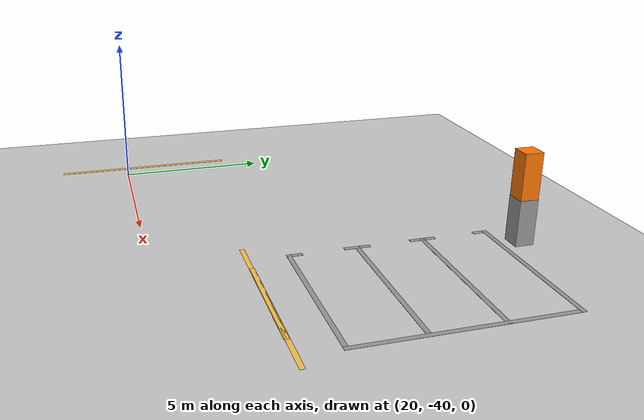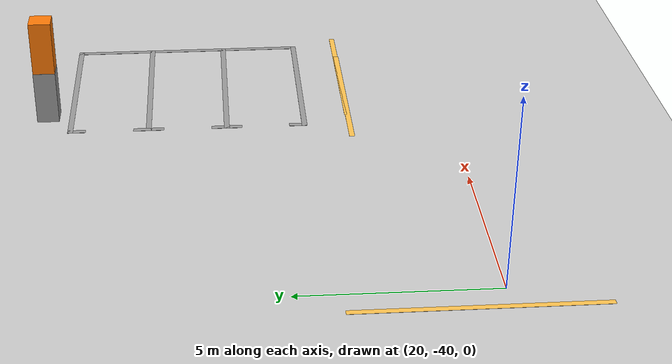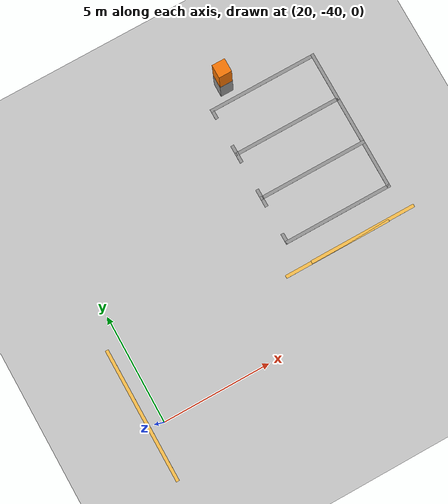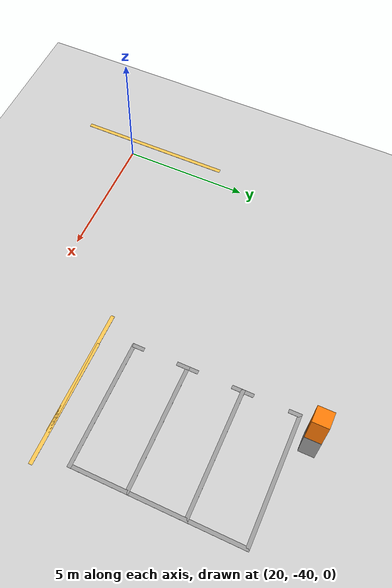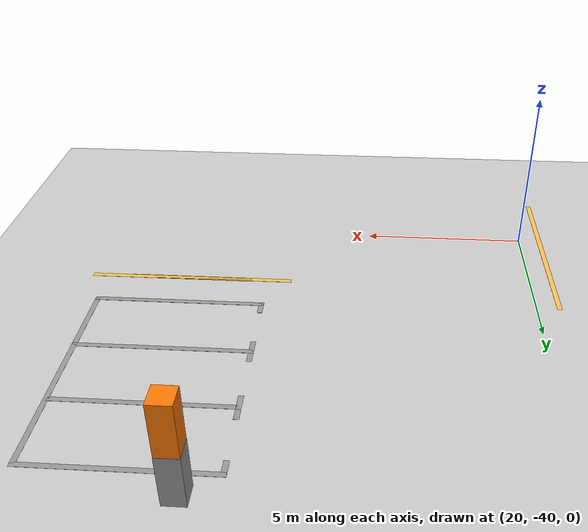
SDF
<sdf version="1.7">
 <world name="default">
  <model name="ground_plane">
   <static>1</static>
   <link name="link">
    <collision name="collision">
     <geometry><plane><normal>0 0 1</normal><size>100 100</size></plane></geometry>
     <surface><friction><ode><mu>100</mu><mu2>50</mu2></ode></friction></surface>
    </collision>
    <visual name="visual">
     <cast_shadows>0</cast_shadows>
     <geometry><plane><normal>0 0 1</normal><size>100 100</size></plane></geometry>
     <material>
      <script><uri>file://media/materials/scripts/gazebo.material</uri><name>Gazebo/Grey</name></script>
     </material>
    </visual>
   </link>
  </model>
  <model name="line_yellow_6.2m_clone_clone">
   <pose>41.7195 -40.4453 0 0 -0 0</pose>
   <link name="Wall_0">
    <collision name="Wall_0_Collision">
     <geometry><box><size>6.2 0.15 0.005</size></box></geometry>
     <pose>0 0 0.0025 0 -0 0</pose>
    </collision>
    <visual name="Wall_0_Visual">
     <pose>0 0 0.0025 0 -0 0</pose>
     <geometry><box><size>6.2 0.15 0.005</size></box></geometry>
     <material>
      <script><uri>file://media/materials/scripts/gazebo.material</uri><name>Gazebo/Grey</name></script>
      <ambient>1 0.764706 0.305882 1</ambient>
     </material>
     <meta><layer>0</layer></meta>
    </visual>
    <pose>-22.406 1.14431 0 0 -0 -1.5708</pose>
   </link>
   <static>1</static>
  </model>
  <model name="carport1_2_clone_1_clone_clone_2">
   <pose>32.3571 -32.2011 0 0 0 -1.57043</pose>
   <link name="Wall_105">
    <collision name="Wall_105_Collision">
     <geometry><box><size>0.61 0.6 1.5</size></box></geometry>
     <pose>0 0 0.75 0 -0 0</pose>
    </collision>
    <visual name="Wall_105_Visual">
     <pose>0 0 0.75 0 -0 0</pose>
     <geometry><box><size>0.61 0.6 1.5</size></box></geometry>
     <material>
      <script><uri>file://media/materials/scripts/gazebo.material</uri><name>Gazebo/Grey</name></script>
      <ambient>1 1 1 1</ambient>
     </material>
     <meta><layer>0</layer></meta>
    </visual>
    <pose>-3.47407 -3.2865 0 0 -0 0</pose>
   </link>
   <link name="Wall_116">
    <collision name="Wall_116_Collision">
     <geometry><box><size>5.1 0.15 0.005</size></box></geometry>
     <pose>0 0 0.0025 0 -0 0</pose>
    </collision>
    <visual name="Wall_116_Visual">
     <pose>0 0 0.0025 0 -0 0</pose>
     <geometry><box><size>5.1 0.15 0.005</size></box></geometry>
     <material>
      <script><uri>file://media/materials/scripts/gazebo.material</uri><name>Gazebo/Grey</name></script>
      <ambient>1 1 1 1</ambient>
     </material>
     <meta><layer>0</layer></meta>
    </visual>
    <pose>-2.82307 -1.7385 0 0 -0 1.5708</pose>
   </link>
   <link name="Wall_124">
    <collision name="Wall_124_Collision">
     <geometry><box><size>5.1 0.15 0.005</size></box></geometry>
     <pose>0 0 0.0025 0 -0 0</pose>
    </collision>
    <visual name="Wall_124_Visual">
     <pose>0 0 0.0025 0 -0 0</pose>
     <geometry><box><size>5.1 0.15 0.005</size></box></geometry>
     <material>
      <script><uri>file://media/materials/scripts/gazebo.material</uri><name>Gazebo/Grey</name></script>
      <ambient>1 1 1 1</ambient>
     </material>
     <meta><layer>0</layer></meta>
    </visual>
    <pose>3.70393 -1.7305 0 0 -0 1.5708</pose>
   </link>
   <link name="Wall_146">
    <collision name="Wall_146_Collision">
     <geometry><box><size>6.67711 0.15 0.005</size></box></geometry>
     <pose>0 0 0.0025 0 -0 0</pose>
    </collision>
    <visual name="Wall_146_Visual">
     <pose>0 0 0.0025 0 -0 0</pose>
     <geometry><box><size>6.67711 0.15 0.005</size></box></geometry>
     <material>
      <script><uri>file://media/materials/scripts/gazebo.material</uri><name>Gazebo/Grey</name></script>
      <ambient>1 1 1 1</ambient>
     </material>
     <meta><layer>0</layer></meta>
    </visual>
    <pose>0.440428 0.7405 0 0 -0 0.001226</pose>
   </link>
   <link name="Wall_168">
    <collision name="Wall_168_Collision">
     <geometry><box><size>5.1 0.15 0.005</size></box></geometry>
     <pose>0 0 0.0025 0 -0 0</pose>
    </collision>
    <visual name="Wall_168_Visual">
     <pose>0 0 0.0025 0 -0 0</pose>
     <geometry><box><size>5.1 0.15 0.005</size></box></geometry>
     <material>
      <script><uri>file://media/materials/scripts/gazebo.material</uri><name>Gazebo/Grey</name></script>
      <ambient>1 1 1 1</ambient>
     </material>
     <meta><layer>0</layer></meta>
    </visual>
    <pose>-0.64827 -1.73839 0 0 -0 1.57088</pose>
   </link>
   <link name="Wall_173">
    <collision name="Wall_173_Collision">
     <geometry><box><size>5.1 0.15 0.005</size></box></geometry>
     <pose>0 0 0.0025 0 -0 0</pose>
    </collision>
    <visual name="Wall_173_Visual">
     <pose>0 0 0.0025 0 -0 0</pose>
     <geometry><box><size>5.1 0.15 0.005</size></box></geometry>
     <material>
      <script><uri>file://media/materials/scripts/gazebo.material</uri><name>Gazebo/Grey</name></script>
      <ambient>1 1 1 1</ambient>
     </material>
     <meta><layer>0</layer></meta>
    </visual>
    <pose>1.52673 -1.73839 0 0 -0 1.57088</pose>
   </link>
   <link name="Wall_177">
    <collision name="Wall_177_Collision">
     <geometry><box><size>0.6 0.59 3</size></box></geometry>
     <pose>0 0 1.5 0 -0 0</pose>
    </collision>
    <visual name="Wall_177_Visual">
     <pose>0 0 1.5 0 -0 0</pose>
     <geometry><box><size>0.6 0.59 3</size></box></geometry>
     <material>
      <script><uri>file://media/materials/scripts/gazebo.material</uri><name>Gazebo/Grey</name></script>
      <ambient>0.996078 0.47451 0.0196078 1</ambient>
     </material>
     <meta><layer>0</layer></meta>
    </visual>
    <pose>-3.47407 -3.2865 0 0 -0 0</pose>
   </link>
   <link name="Wall_179">
    <collision name="Wall_179_Collision">
     <geometry><box><size>0.5 0.15 0.005</size></box></geometry>
     <pose>0 0 0.0025 0 -0 0</pose>
    </collision>
    <visual name="Wall_179_Visual">
     <pose>0 0 0.0025 0 -0 0</pose>
     <geometry><box><size>0.5 0.15 0.005</size></box></geometry>
     <material>
      <script><uri>file://media/materials/scripts/gazebo.material</uri><name>Gazebo/Grey</name></script>
      <ambient>1 1 1 1</ambient>
     </material>
     <meta><layer>0</layer></meta>
    </visual>
    <pose>-2.64807 -4.2135 0 0 -0 0</pose>
   </link>
   <link name="Wall_181">
    <collision name="Wall_181_Collision">
     <geometry><box><size>0.5 0.15 0.005</size></box></geometry>
     <pose>0 0 0.0025 0 -0 0</pose>
    </collision>
    <visual name="Wall_181_Visual">
     <pose>0 0 0.0025 0 -0 0</pose>
     <geometry><box><size>0.5 0.15 0.005</size></box></geometry>
     <material>
      <script><uri>file://media/materials/scripts/gazebo.material</uri><name>Gazebo/Grey</name></script>
      <ambient>1 1 1 1</ambient>
     </material>
     <meta><layer>0</layer></meta>
    </visual>
    <pose>-0.823072 -4.2135 0 0 -0 3.14159</pose>
   </link>
   <link name="Wall_183">
    <collision name="Wall_183_Collision">
     <geometry><box><size>0.5 0.15 0.005</size></box></geometry>
     <pose>0 0 0.0025 0 -0 0</pose>
    </collision>
    <visual name="Wall_183_Visual">
     <pose>0 0 0.0025 0 -0 0</pose>
     <geometry><box><size>0.5 0.15 0.005</size></box></geometry>
     <material>
      <script><uri>file://media/materials/scripts/gazebo.material</uri><name>Gazebo/Grey</name></script>
      <ambient>1 1 1 1</ambient>
     </material>
     <meta><layer>0</layer></meta>
    </visual>
    <pose>-0.473072 -4.2135 0 0 -0 0</pose>
   </link>
   <link name="Wall_185">
    <collision name="Wall_185_Collision">
     <geometry><box><size>0.5 0.15 0.005</size></box></geometry>
     <pose>0 0 0.0025 0 -0 0</pose>
    </collision>
    <visual name="Wall_185_Visual">
     <pose>0 0 0.0025 0 -0 0</pose>
     <geometry><box><size>0.5 0.15 0.005</size></box></geometry>
     <material>
      <script><uri>file://media/materials/scripts/gazebo.material</uri><name>Gazebo/Grey</name></script>
      <ambient>1 1 1 1</ambient>
     </material>
     <meta><layer>0</layer></meta>
    </visual>
    <pose>1.35193 -4.2135 0 0 -0 3.14159</pose>
   </link>
   <link name="Wall_187">
    <collision name="Wall_187_Collision">
     <geometry><box><size>0.5 0.15 0.005</size></box></geometry>
     <pose>0 0 0.0025 0 -0 0</pose>
    </collision>
    <visual name="Wall_187_Visual">
     <pose>0 0 0.0025 0 -0 0</pose>
     <geometry><box><size>0.5 0.15 0.005</size></box></geometry>
     <material>
      <script><uri>file://media/materials/scripts/gazebo.material</uri><name>Gazebo/Grey</name></script>
      <ambient>1 1 1 1</ambient>
     </material>
     <meta><layer>0</layer></meta>
    </visual>
    <pose>1.70193 -4.2135 0 0 -0 0</pose>
   </link>
   <link name="Wall_189">
    <collision name="Wall_189_Collision">
     <geometry><box><size>0.5 0.15 0.005</size></box></geometry>
     <pose>0 0 0.0025 0 -0 0</pose>
    </collision>
    <visual name="Wall_189_Visual">
     <pose>0 0 0.0025 0 -0 0</pose>
     <geometry><box><size>0.5 0.15 0.005</size></box></geometry>
     <material>
      <script><uri>file://media/materials/scripts/gazebo.material</uri><name>Gazebo/Grey</name></script>
      <ambient>1 1 1 1</ambient>
     </material>
     <meta><layer>0</layer></meta>
    </visual>
    <pose>3.52893 -4.2055 0 0 -0 3.14159</pose>
   </link>
   <static>1</static>
  </model>
  <model name="line_yellow_5m_0_clone">
   <pose>51.063 -27.4723 0 0 -0 0</pose>
   <link name="Wall_4">
    <collision name="Wall_4_Collision">
     <geometry><box><size>5 0.15 0.005</size></box></geometry>
     <pose>0 0 0.0025 0 -0 0</pose>
    </collision>
    <visual name="Wall_4_Visual">
     <pose>0 0 0.0025 0 -0 0</pose>
     <geometry><box><size>5 0.15 0.005</size></box></geometry>
     <material>
      <script><uri>file://media/materials/scripts/gazebo.material</uri><name>Gazebo/Grey</name></script>
      <ambient>1 0.764706 0.305882 1</ambient>
     </material>
     <meta><layer>0</layer></meta>
    </visual>
    <pose>-19.9295 -9.68174 0 0 -0 0</pose>
   </link>
   <static>1</static>
  </model>
  <model name="line_yellow_5m_0_clone_clone">
   <pose>49.8165 -27.4915 0 0 -0 0</pose>
   <link name="Wall_4">
    <collision name="Wall_4_Collision">
     <geometry><box><size>5 0.15 0.005</size></box></geometry>
     <pose>0 0 0.0025 0 -0 0</pose>
    </collision>
    <visual name="Wall_4_Visual">
     <pose>0 0 0.0025 0 -0 0</pose>
     <geometry><box><size>5 0.15 0.005</size></box></geometry>
     <material>
      <script><uri>file://media/materials/scripts/gazebo.material</uri><name>Gazebo/Grey</name></script>
      <ambient>1 0.764706 0.305882 1</ambient>
     </material>
     <meta><layer>0</layer></meta>
    </visual>
    <pose>-19.9295 -9.68174 0 0 -0 0</pose>
   </link>
   <static>1</static>
  </model>
 </world>
</sdf>
